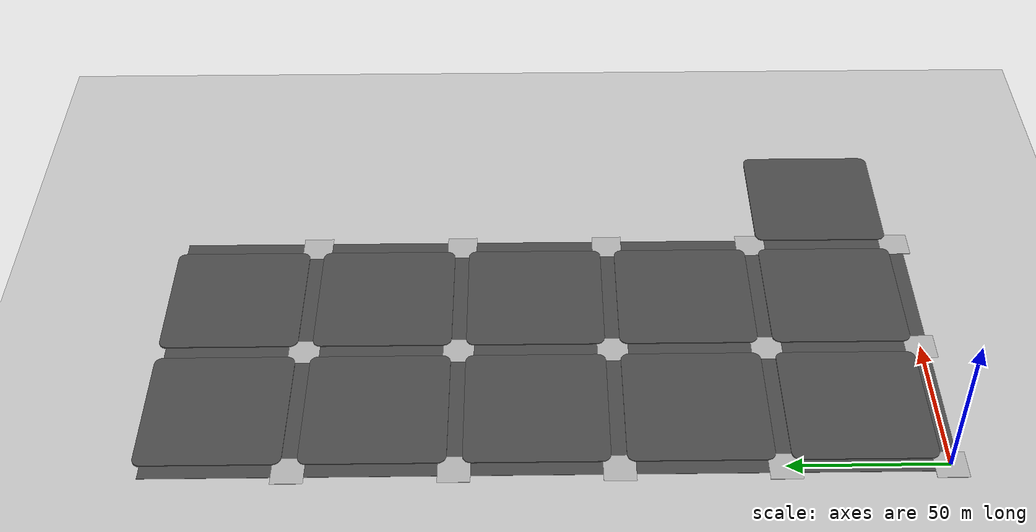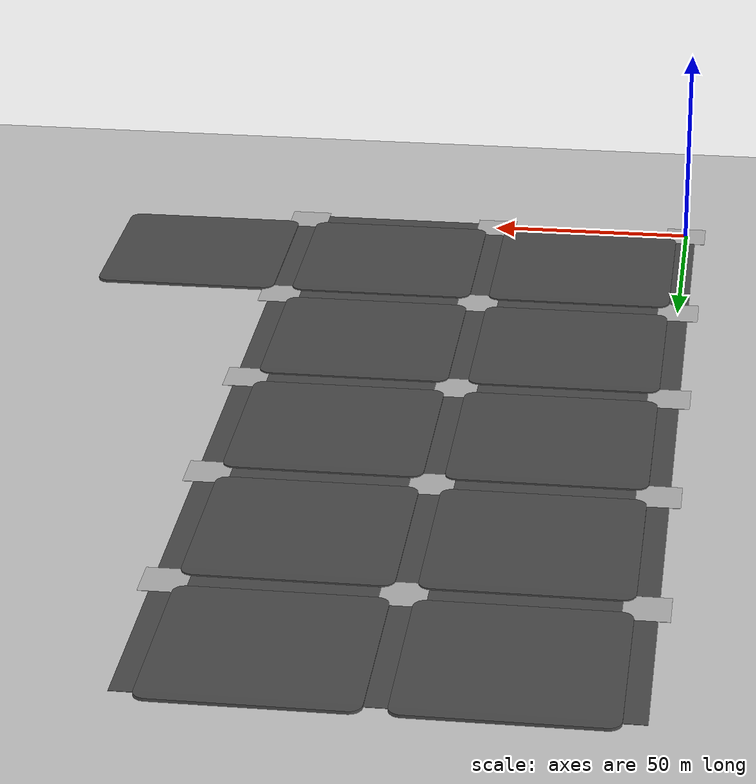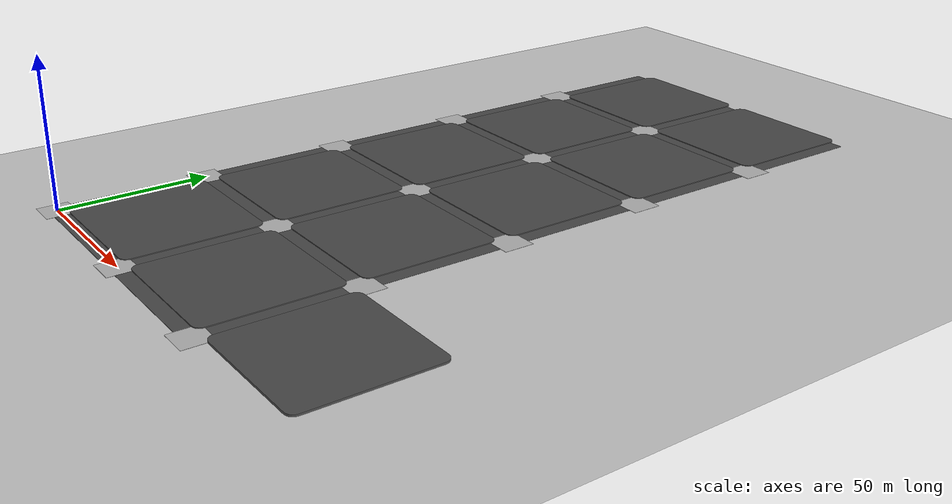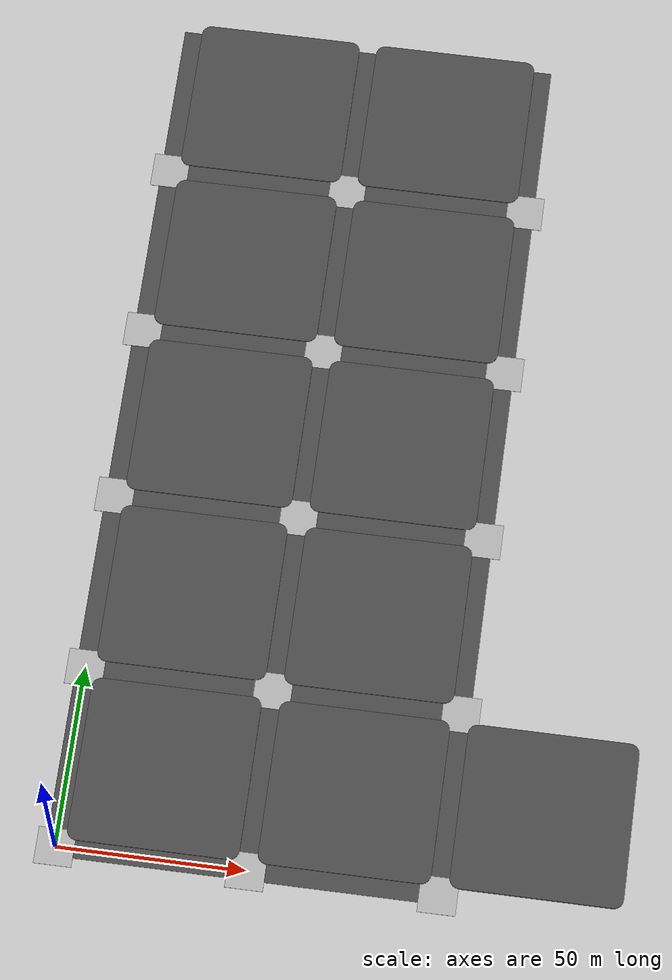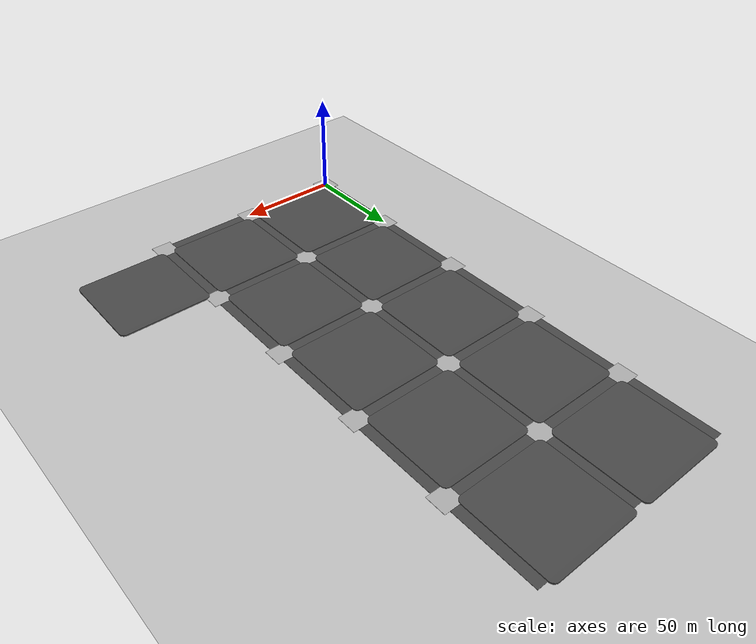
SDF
<sdf version="1.5">
 <world name="default">
  <model name="ground_plane">
   <static>1</static>
   <link name="link">
    <collision name="collision">
     <geometry><plane><normal>0 0 1</normal><size>10000 10000</size></plane></geometry>
     <surface>
      <contact><collide_bitmask>65535</collide_bitmask></contact>
      <friction><ode><mu>100</mu><mu2>50</mu2></ode></friction>
     </surface>
    </collision>
    <visual name="visual">
     <cast_shadows>0</cast_shadows>
     <geometry><plane><normal>0 0 1</normal><size>10000 10000</size></plane></geometry>
     <material>
      <script><uri>file://media/materials/scripts/gazebo.material</uri><name>Gazebo/Grey</name></script>
     </material>
    </visual>
   </link>
  </model>
  <model name="asphalt_plane_0_0">
   <pose>25 25 0 0 -0 0</pose>
   <static>1</static>
   <link name="link">
    <collision name="collision">
     <geometry>
      <mesh>
       <uri>/Users/selfcar/Desktop/Self-Driving-Comps/models/asphalt_plane/blockbevel.dae</uri>
       <scale>0.565 0.565 1</scale>
      </mesh>
     </geometry>
    </collision>
    <visual name="visual">
     <cast_shadows>0</cast_shadows>
     <geometry>
      <mesh>
       <uri>/Users/selfcar/Desktop/Self-Driving-Comps/models/asphalt_plane/blockbevel.dae</uri>
       <scale>0.565 0.565 1</scale>
      </mesh>
     </geometry>
     <material>
      <script>
       <uri>models/asphalt_plane/materials/scripts</uri>
       <uri>models/asphalt_plane/materials/textures</uri>
       <name>vrc/asphalt</name>
      </script>
     </material>
    </visual>
   </link>
  </model>
  <model name="asphalt_plane_1_0">
   <pose>75 25 0 0 -0 0</pose>
   <static>1</static>
   <link name="link">
    <collision name="collision">
     <geometry>
      <mesh>
       <uri>/Users/selfcar/Desktop/Self-Driving-Comps/models/asphalt_plane/blockbevel.dae</uri>
       <scale>0.565 0.565 1</scale>
      </mesh>
     </geometry>
    </collision>
    <visual name="visual">
     <cast_shadows>0</cast_shadows>
     <geometry>
      <mesh>
       <uri>/Users/selfcar/Desktop/Self-Driving-Comps/models/asphalt_plane/blockbevel.dae</uri>
       <scale>0.565 0.565 1</scale>
      </mesh>
     </geometry>
     <material>
      <script>
       <uri>models/asphalt_plane/materials/scripts</uri>
       <uri>models/asphalt_plane/materials/textures</uri>
       <name>vrc/asphalt</name>
      </script>
     </material>
    </visual>
   </link>
  </model>
  <model name="asphalt_plane_2_0">
   <pose>125 25 0 0 -0 0</pose>
   <static>1</static>
   <link name="link">
    <collision name="collision">
     <geometry>
      <mesh>
       <uri>/Users/selfcar/Desktop/Self-Driving-Comps/models/asphalt_plane/blockbevel.dae</uri>
       <scale>0.565 0.565 1</scale>
      </mesh>
     </geometry>
    </collision>
    <visual name="visual">
     <cast_shadows>0</cast_shadows>
     <geometry>
      <mesh>
       <uri>/Users/selfcar/Desktop/Self-Driving-Comps/models/asphalt_plane/blockbevel.dae</uri>
       <scale>0.565 0.565 1</scale>
      </mesh>
     </geometry>
     <material>
      <script>
       <uri>models/asphalt_plane/materials/scripts</uri>
       <uri>models/asphalt_plane/materials/textures</uri>
       <name>vrc/asphalt</name>
      </script>
     </material>
    </visual>
   </link>
  </model>
  <model name="asphalt_plane_0_1">
   <pose>25 75 0 0 -0 0</pose>
   <static>1</static>
   <link name="link">
    <collision name="collision">
     <geometry>
      <mesh>
       <uri>/Users/selfcar/Desktop/Self-Driving-Comps/models/asphalt_plane/blockbevel.dae</uri>
       <scale>0.565 0.565 1</scale>
      </mesh>
     </geometry>
    </collision>
    <visual name="visual">
     <cast_shadows>0</cast_shadows>
     <geometry>
      <mesh>
       <uri>/Users/selfcar/Desktop/Self-Driving-Comps/models/asphalt_plane/blockbevel.dae</uri>
       <scale>0.565 0.565 1</scale>
      </mesh>
     </geometry>
     <material>
      <script>
       <uri>models/asphalt_plane/materials/scripts</uri>
       <uri>models/asphalt_plane/materials/textures</uri>
       <name>vrc/asphalt</name>
      </script>
     </material>
    </visual>
   </link>
  </model>
  <model name="asphalt_plane_1_1">
   <pose>75 75 0 0 -0 0</pose>
   <static>1</static>
   <link name="link">
    <collision name="collision">
     <geometry>
      <mesh>
       <uri>/Users/selfcar/Desktop/Self-Driving-Comps/models/asphalt_plane/blockbevel.dae</uri>
       <scale>0.565 0.565 1</scale>
      </mesh>
     </geometry>
    </collision>
    <visual name="visual">
     <cast_shadows>0</cast_shadows>
     <geometry>
      <mesh>
       <uri>/Users/selfcar/Desktop/Self-Driving-Comps/models/asphalt_plane/blockbevel.dae</uri>
       <scale>0.565 0.565 1</scale>
      </mesh>
     </geometry>
     <material>
      <script>
       <uri>models/asphalt_plane/materials/scripts</uri>
       <uri>models/asphalt_plane/materials/textures</uri>
       <name>vrc/asphalt</name>
      </script>
     </material>
    </visual>
   </link>
  </model>
  <model name="asphalt_plane_0_2">
   <pose>25 125 0 0 -0 0</pose>
   <static>1</static>
   <link name="link">
    <collision name="collision">
     <geometry>
      <mesh>
       <uri>/Users/selfcar/Desktop/Self-Driving-Comps/models/asphalt_plane/blockbevel.dae</uri>
       <scale>0.565 0.565 1</scale>
      </mesh>
     </geometry>
    </collision>
    <visual name="visual">
     <cast_shadows>0</cast_shadows>
     <geometry>
      <mesh>
       <uri>/Users/selfcar/Desktop/Self-Driving-Comps/models/asphalt_plane/blockbevel.dae</uri>
       <scale>0.565 0.565 1</scale>
      </mesh>
     </geometry>
     <material>
      <script>
       <uri>models/asphalt_plane/materials/scripts</uri>
       <uri>models/asphalt_plane/materials/textures</uri>
       <name>vrc/asphalt</name>
      </script>
     </material>
    </visual>
   </link>
  </model>
  <model name="asphalt_plane_1_2">
   <pose>75 125 0 0 -0 0</pose>
   <static>1</static>
   <link name="link">
    <collision name="collision">
     <geometry>
      <mesh>
       <uri>/Users/selfcar/Desktop/Self-Driving-Comps/models/asphalt_plane/blockbevel.dae</uri>
       <scale>0.565 0.565 1</scale>
      </mesh>
     </geometry>
    </collision>
    <visual name="visual">
     <cast_shadows>0</cast_shadows>
     <geometry>
      <mesh>
       <uri>/Users/selfcar/Desktop/Self-Driving-Comps/models/asphalt_plane/blockbevel.dae</uri>
       <scale>0.565 0.565 1</scale>
      </mesh>
     </geometry>
     <material>
      <script>
       <uri>models/asphalt_plane/materials/scripts</uri>
       <uri>models/asphalt_plane/materials/textures</uri>
       <name>vrc/asphalt</name>
      </script>
     </material>
    </visual>
   </link>
  </model>
  <model name="asphalt_plane_0_3">
   <pose>25 175 0 0 -0 0</pose>
   <static>1</static>
   <link name="link">
    <collision name="collision">
     <geometry>
      <mesh>
       <uri>/Users/selfcar/Desktop/Self-Driving-Comps/models/asphalt_plane/blockbevel.dae</uri>
       <scale>0.565 0.565 1</scale>
      </mesh>
     </geometry>
    </collision>
    <visual name="visual">
     <cast_shadows>0</cast_shadows>
     <geometry>
      <mesh>
       <uri>/Users/selfcar/Desktop/Self-Driving-Comps/models/asphalt_plane/blockbevel.dae</uri>
       <scale>0.565 0.565 1</scale>
      </mesh>
     </geometry>
     <material>
      <script>
       <uri>models/asphalt_plane/materials/scripts</uri>
       <uri>models/asphalt_plane/materials/textures</uri>
       <name>vrc/asphalt</name>
      </script>
     </material>
    </visual>
   </link>
  </model>
  <model name="asphalt_plane_1_3">
   <pose>75 175 0 0 -0 0</pose>
   <static>1</static>
   <link name="link">
    <collision name="collision">
     <geometry>
      <mesh>
       <uri>/Users/selfcar/Desktop/Self-Driving-Comps/models/asphalt_plane/blockbevel.dae</uri>
       <scale>0.565 0.565 1</scale>
      </mesh>
     </geometry>
    </collision>
    <visual name="visual">
     <cast_shadows>0</cast_shadows>
     <geometry>
      <mesh>
       <uri>/Users/selfcar/Desktop/Self-Driving-Comps/models/asphalt_plane/blockbevel.dae</uri>
       <scale>0.565 0.565 1</scale>
      </mesh>
     </geometry>
     <material>
      <script>
       <uri>models/asphalt_plane/materials/scripts</uri>
       <uri>models/asphalt_plane/materials/textures</uri>
       <name>vrc/asphalt</name>
      </script>
     </material>
    </visual>
   </link>
  </model>
  <model name="asphalt_plane_0_4">
   <pose>25 225 0 0 -0 0</pose>
   <static>1</static>
   <link name="link">
    <collision name="collision">
     <geometry>
      <mesh>
       <uri>/Users/selfcar/Desktop/Self-Driving-Comps/models/asphalt_plane/blockbevel.dae</uri>
       <scale>0.565 0.565 1</scale>
      </mesh>
     </geometry>
    </collision>
    <visual name="visual">
     <cast_shadows>0</cast_shadows>
     <geometry>
      <mesh>
       <uri>/Users/selfcar/Desktop/Self-Driving-Comps/models/asphalt_plane/blockbevel.dae</uri>
       <scale>0.565 0.565 1</scale>
      </mesh>
     </geometry>
     <material>
      <script>
       <uri>models/asphalt_plane/materials/scripts</uri>
       <uri>models/asphalt_plane/materials/textures</uri>
       <name>vrc/asphalt</name>
      </script>
     </material>
    </visual>
   </link>
  </model>
  <model name="asphalt_plane_1_4">
   <pose>75 225 0 0 -0 0</pose>
   <static>1</static>
   <link name="link">
    <collision name="collision">
     <geometry>
      <mesh>
       <uri>/Users/selfcar/Desktop/Self-Driving-Comps/models/asphalt_plane/blockbevel.dae</uri>
       <scale>0.565 0.565 1</scale>
      </mesh>
     </geometry>
    </collision>
    <visual name="visual">
     <cast_shadows>0</cast_shadows>
     <geometry>
      <mesh>
       <uri>/Users/selfcar/Desktop/Self-Driving-Comps/models/asphalt_plane/blockbevel.dae</uri>
       <scale>0.565 0.565 1</scale>
      </mesh>
     </geometry>
     <material>
      <script>
       <uri>models/asphalt_plane/materials/scripts</uri>
       <uri>models/asphalt_plane/materials/textures</uri>
       <name>vrc/asphalt</name>
      </script>
     </material>
    </visual>
   </link>
  </model>
  <model name="road_1_0_0">
   <pose>0 25 0 0 -0 1.5707</pose>
   <static>1</static>
   <link name="link">
    <collision name="collision"><geometry><box><size>40 5 0.1</size></box></geometry></collision>
    <visual name="visual">
     <cast_shadows>0</cast_shadows>
     <geometry><box><size>40 5 0.1</size></box></geometry>
     <material>
      <script>
       <uri>model://comps_road/materials/scripts</uri>
       <uri>model://comps_road/materials/textures</uri>
       <name>comps_road</name>
      </script>
     </material>
    </visual>
   </link>
  </model>
  <model name="road_2_0_0">
   <pose>25 0 0 0 -0 0</pose>
   <static>1</static>
   <link name="link">
    <collision name="collision"><geometry><box><size>40 5 0.1</size></box></geometry></collision>
    <visual name="visual">
     <cast_shadows>0</cast_shadows>
     <geometry><box><size>40 5 0.1</size></box></geometry>
     <material>
      <script>
       <uri>model://comps_road/materials/scripts</uri>
       <uri>model://comps_road/materials/textures</uri>
       <name>comps_road</name>
      </script>
     </material>
    </visual>
   </link>
  </model>
  <model name="intersection_0_0">
   <static>1</static>
   <link name="link">
    <collision name="collision"><geometry><box><size>10 10 0.1</size></box></geometry></collision>
    <visual name="visual">
     <cast_shadows>0</cast_shadows>
     <geometry><box><size>10 10 0.1</size></box></geometry>
     <material>
      <script>
       <uri>model://intersection/materials/scripts</uri>
       <uri>model://intersection/materials/textures</uri>
       <name>intersection</name>
      </script>
     </material>
    </visual>
   </link>
  </model>
  <model name="road_1_1_0">
   <pose>50 25 0 0 -0 1.5707</pose>
   <static>1</static>
   <link name="link">
    <collision name="collision"><geometry><box><size>40 5 0.1</size></box></geometry></collision>
    <visual name="visual">
     <cast_shadows>0</cast_shadows>
     <geometry><box><size>40 5 0.1</size></box></geometry>
     <material>
      <script>
       <uri>model://comps_road/materials/scripts</uri>
       <uri>model://comps_road/materials/textures</uri>
       <name>comps_road</name>
      </script>
     </material>
    </visual>
   </link>
  </model>
  <model name="road_2_1_0">
   <pose>75 0 0 0 -0 0</pose>
   <static>1</static>
   <link name="link">
    <collision name="collision"><geometry><box><size>40 5 0.1</size></box></geometry></collision>
    <visual name="visual">
     <cast_shadows>0</cast_shadows>
     <geometry><box><size>40 5 0.1</size></box></geometry>
     <material>
      <script>
       <uri>model://comps_road/materials/scripts</uri>
       <uri>model://comps_road/materials/textures</uri>
       <name>comps_road</name>
      </script>
     </material>
    </visual>
   </link>
  </model>
  <model name="intersection_1_0">
   <pose>50 0 0 0 -0 0</pose>
   <static>1</static>
   <link name="link">
    <collision name="collision"><geometry><box><size>10 10 0.1</size></box></geometry></collision>
    <visual name="visual">
     <cast_shadows>0</cast_shadows>
     <geometry><box><size>10 10 0.1</size></box></geometry>
     <material>
      <script>
       <uri>model://intersection/materials/scripts</uri>
       <uri>model://intersection/materials/textures</uri>
       <name>intersection</name>
      </script>
     </material>
    </visual>
   </link>
  </model>
  <model name="road_1_2_0">
   <pose>100 25 0 0 -0 1.5707</pose>
   <static>1</static>
   <link name="link">
    <collision name="collision"><geometry><box><size>40 5 0.1</size></box></geometry></collision>
    <visual name="visual">
     <cast_shadows>0</cast_shadows>
     <geometry><box><size>40 5 0.1</size></box></geometry>
     <material>
      <script>
       <uri>model://comps_road/materials/scripts</uri>
       <uri>model://comps_road/materials/textures</uri>
       <name>comps_road</name>
      </script>
     </material>
    </visual>
   </link>
  </model>
  <model name="intersection_2_0">
   <pose>100 0 0 0 -0 0</pose>
   <static>1</static>
   <link name="link">
    <collision name="collision"><geometry><box><size>10 10 0.1</size></box></geometry></collision>
    <visual name="visual">
     <cast_shadows>0</cast_shadows>
     <geometry><box><size>10 10 0.1</size></box></geometry>
     <material>
      <script>
       <uri>model://intersection/materials/scripts</uri>
       <uri>model://intersection/materials/textures</uri>
       <name>intersection</name>
      </script>
     </material>
    </visual>
   </link>
  </model>
  <model name="road_1_0_1">
   <pose>0 75 0 0 -0 1.5707</pose>
   <static>1</static>
   <link name="link">
    <collision name="collision"><geometry><box><size>40 5 0.1</size></box></geometry></collision>
    <visual name="visual">
     <cast_shadows>0</cast_shadows>
     <geometry><box><size>40 5 0.1</size></box></geometry>
     <material>
      <script>
       <uri>model://comps_road/materials/scripts</uri>
       <uri>model://comps_road/materials/textures</uri>
       <name>comps_road</name>
      </script>
     </material>
    </visual>
   </link>
  </model>
  <model name="road_2_0_1">
   <pose>25 50 0 0 -0 0</pose>
   <static>1</static>
   <link name="link">
    <collision name="collision"><geometry><box><size>40 5 0.1</size></box></geometry></collision>
    <visual name="visual">
     <cast_shadows>0</cast_shadows>
     <geometry><box><size>40 5 0.1</size></box></geometry>
     <material>
      <script>
       <uri>model://comps_road/materials/scripts</uri>
       <uri>model://comps_road/materials/textures</uri>
       <name>comps_road</name>
      </script>
     </material>
    </visual>
   </link>
  </model>
  <model name="intersection_0_1">
   <pose>0 50 0 0 -0 0</pose>
   <static>1</static>
   <link name="link">
    <collision name="collision"><geometry><box><size>10 10 0.1</size></box></geometry></collision>
    <visual name="visual">
     <cast_shadows>0</cast_shadows>
     <geometry><box><size>10 10 0.1</size></box></geometry>
     <material>
      <script>
       <uri>model://intersection/materials/scripts</uri>
       <uri>model://intersection/materials/textures</uri>
       <name>intersection</name>
      </script>
     </material>
    </visual>
   </link>
  </model>
  <model name="road_1_1_1">
   <pose>50 75 0 0 -0 1.5707</pose>
   <static>1</static>
   <link name="link">
    <collision name="collision"><geometry><box><size>40 5 0.1</size></box></geometry></collision>
    <visual name="visual">
     <cast_shadows>0</cast_shadows>
     <geometry><box><size>40 5 0.1</size></box></geometry>
     <material>
      <script>
       <uri>model://comps_road/materials/scripts</uri>
       <uri>model://comps_road/materials/textures</uri>
       <name>comps_road</name>
      </script>
     </material>
    </visual>
   </link>
  </model>
  <model name="road_2_1_1">
   <pose>75 50 0 0 -0 0</pose>
   <static>1</static>
   <link name="link">
    <collision name="collision"><geometry><box><size>40 5 0.1</size></box></geometry></collision>
    <visual name="visual">
     <cast_shadows>0</cast_shadows>
     <geometry><box><size>40 5 0.1</size></box></geometry>
     <material>
      <script>
       <uri>model://comps_road/materials/scripts</uri>
       <uri>model://comps_road/materials/textures</uri>
       <name>comps_road</name>
      </script>
     </material>
    </visual>
   </link>
  </model>
  <model name="intersection_1_1">
   <pose>50 50 0 0 -0 0</pose>
   <static>1</static>
   <link name="link">
    <collision name="collision"><geometry><box><size>10 10 0.1</size></box></geometry></collision>
    <visual name="visual">
     <cast_shadows>0</cast_shadows>
     <geometry><box><size>10 10 0.1</size></box></geometry>
     <material>
      <script>
       <uri>model://intersection/materials/scripts</uri>
       <uri>model://intersection/materials/textures</uri>
       <name>intersection</name>
      </script>
     </material>
    </visual>
   </link>
  </model>
  <model name="road_1_2_1">
   <pose>100 75 0 0 -0 1.5707</pose>
   <static>1</static>
   <link name="link">
    <collision name="collision"><geometry><box><size>40 5 0.1</size></box></geometry></collision>
    <visual name="visual">
     <cast_shadows>0</cast_shadows>
     <geometry><box><size>40 5 0.1</size></box></geometry>
     <material>
      <script>
       <uri>model://comps_road/materials/scripts</uri>
       <uri>model://comps_road/materials/textures</uri>
       <name>comps_road</name>
      </script>
     </material>
    </visual>
   </link>
  </model>
  <model name="intersection_2_1">
   <pose>100 50 0 0 -0 0</pose>
   <static>1</static>
   <link name="link">
    <collision name="collision"><geometry><box><size>10 10 0.1</size></box></geometry></collision>
    <visual name="visual">
     <cast_shadows>0</cast_shadows>
     <geometry><box><size>10 10 0.1</size></box></geometry>
     <material>
      <script>
       <uri>model://intersection/materials/scripts</uri>
       <uri>model://intersection/materials/textures</uri>
       <name>intersection</name>
      </script>
     </material>
    </visual>
   </link>
  </model>
  <model name="road_1_0_2">
   <pose>0 125 0 0 -0 1.5707</pose>
   <static>1</static>
   <link name="link">
    <collision name="collision"><geometry><box><size>40 5 0.1</size></box></geometry></collision>
    <visual name="visual">
     <cast_shadows>0</cast_shadows>
     <geometry><box><size>40 5 0.1</size></box></geometry>
     <material>
      <script>
       <uri>model://comps_road/materials/scripts</uri>
       <uri>model://comps_road/materials/textures</uri>
       <name>comps_road</name>
      </script>
     </material>
    </visual>
   </link>
  </model>
  <model name="road_2_0_2">
   <pose>25 100 0 0 -0 0</pose>
   <static>1</static>
   <link name="link">
    <collision name="collision"><geometry><box><size>40 5 0.1</size></box></geometry></collision>
    <visual name="visual">
     <cast_shadows>0</cast_shadows>
     <geometry><box><size>40 5 0.1</size></box></geometry>
     <material>
      <script>
       <uri>model://comps_road/materials/scripts</uri>
       <uri>model://comps_road/materials/textures</uri>
       <name>comps_road</name>
      </script>
     </material>
    </visual>
   </link>
  </model>
  <model name="intersection_0_2">
   <pose>0 100 0 0 -0 0</pose>
   <static>1</static>
   <link name="link">
    <collision name="collision"><geometry><box><size>10 10 0.1</size></box></geometry></collision>
    <visual name="visual">
     <cast_shadows>0</cast_shadows>
     <geometry><box><size>10 10 0.1</size></box></geometry>
     <material>
      <script>
       <uri>model://intersection/materials/scripts</uri>
       <uri>model://intersection/materials/textures</uri>
       <name>intersection</name>
      </script>
     </material>
    </visual>
   </link>
  </model>
  <model name="road_1_1_2">
   <pose>50 125 0 0 -0 1.5707</pose>
   <static>1</static>
   <link name="link">
    <collision name="collision"><geometry><box><size>40 5 0.1</size></box></geometry></collision>
    <visual name="visual">
     <cast_shadows>0</cast_shadows>
     <geometry><box><size>40 5 0.1</size></box></geometry>
     <material>
      <script>
       <uri>model://comps_road/materials/scripts</uri>
       <uri>model://comps_road/materials/textures</uri>
       <name>comps_road</name>
      </script>
     </material>
    </visual>
   </link>
  </model>
  <model name="road_2_1_2">
   <pose>75 100 0 0 -0 0</pose>
   <static>1</static>
   <link name="link">
    <collision name="collision"><geometry><box><size>40 5 0.1</size></box></geometry></collision>
    <visual name="visual">
     <cast_shadows>0</cast_shadows>
     <geometry><box><size>40 5 0.1</size></box></geometry>
     <material>
      <script>
       <uri>model://comps_road/materials/scripts</uri>
       <uri>model://comps_road/materials/textures</uri>
       <name>comps_road</name>
      </script>
     </material>
    </visual>
   </link>
  </model>
  <model name="intersection_1_2">
   <pose>50 100 0 0 -0 0</pose>
   <static>1</static>
   <link name="link">
    <collision name="collision"><geometry><box><size>10 10 0.1</size></box></geometry></collision>
    <visual name="visual">
     <cast_shadows>0</cast_shadows>
     <geometry><box><size>10 10 0.1</size></box></geometry>
     <material>
      <script>
       <uri>model://intersection/materials/scripts</uri>
       <uri>model://intersection/materials/textures</uri>
       <name>intersection</name>
      </script>
     </material>
    </visual>
   </link>
  </model>
  <model name="road_1_2_2">
   <pose>100 125 0 0 -0 1.5707</pose>
   <static>1</static>
   <link name="link">
    <collision name="collision"><geometry><box><size>40 5 0.1</size></box></geometry></collision>
    <visual name="visual">
     <cast_shadows>0</cast_shadows>
     <geometry><box><size>40 5 0.1</size></box></geometry>
     <material>
      <script>
       <uri>model://comps_road/materials/scripts</uri>
       <uri>model://comps_road/materials/textures</uri>
       <name>comps_road</name>
      </script>
     </material>
    </visual>
   </link>
  </model>
  <model name="intersection_2_2">
   <pose>100 100 0 0 -0 0</pose>
   <static>1</static>
   <link name="link">
    <collision name="collision"><geometry><box><size>10 10 0.1</size></box></geometry></collision>
    <visual name="visual">
     <cast_shadows>0</cast_shadows>
     <geometry><box><size>10 10 0.1</size></box></geometry>
     <material>
      <script>
       <uri>model://intersection/materials/scripts</uri>
       <uri>model://intersection/materials/textures</uri>
       <name>intersection</name>
      </script>
     </material>
    </visual>
   </link>
  </model>
  <model name="road_1_0_3">
   <pose>0 175 0 0 -0 1.5707</pose>
   <static>1</static>
   <link name="link">
    <collision name="collision"><geometry><box><size>40 5 0.1</size></box></geometry></collision>
    <visual name="visual">
     <cast_shadows>0</cast_shadows>
     <geometry><box><size>40 5 0.1</size></box></geometry>
     <material>
      <script>
       <uri>model://comps_road/materials/scripts</uri>
       <uri>model://comps_road/materials/textures</uri>
       <name>comps_road</name>
      </script>
     </material>
    </visual>
   </link>
  </model>
  <model name="road_2_0_3">
   <pose>25 150 0 0 -0 0</pose>
   <static>1</static>
   <link name="link">
    <collision name="collision"><geometry><box><size>40 5 0.1</size></box></geometry></collision>
    <visual name="visual">
     <cast_shadows>0</cast_shadows>
     <geometry><box><size>40 5 0.1</size></box></geometry>
     <material>
      <script>
       <uri>model://comps_road/materials/scripts</uri>
       <uri>model://comps_road/materials/textures</uri>
       <name>comps_road</name>
      </script>
     </material>
    </visual>
   </link>
  </model>
  <model name="intersection_0_3">
   <pose>0 150 0 0 -0 0</pose>
   <static>1</static>
   <link name="link">
    <collision name="collision"><geometry><box><size>10 10 0.1</size></box></geometry></collision>
    <visual name="visual">
     <cast_shadows>0</cast_shadows>
     <geometry><box><size>10 10 0.1</size></box></geometry>
     <material>
      <script>
       <uri>model://intersection/materials/scripts</uri>
       <uri>model://intersection/materials/textures</uri>
       <name>intersection</name>
      </script>
     </material>
    </visual>
   </link>
  </model>
  <model name="road_1_1_3">
   <pose>50 175 0 0 -0 1.5707</pose>
   <static>1</static>
   <link name="link">
    <collision name="collision"><geometry><box><size>40 5 0.1</size></box></geometry></collision>
    <visual name="visual">
     <cast_shadows>0</cast_shadows>
     <geometry><box><size>40 5 0.1</size></box></geometry>
     <material>
      <script>
       <uri>model://comps_road/materials/scripts</uri>
       <uri>model://comps_road/materials/textures</uri>
       <name>comps_road</name>
      </script>
     </material>
    </visual>
   </link>
  </model>
  <model name="road_2_1_3">
   <pose>75 150 0 0 -0 0</pose>
   <static>1</static>
   <link name="link">
    <collision name="collision"><geometry><box><size>40 5 0.1</size></box></geometry></collision>
    <visual name="visual">
     <cast_shadows>0</cast_shadows>
     <geometry><box><size>40 5 0.1</size></box></geometry>
     <material>
      <script>
       <uri>model://comps_road/materials/scripts</uri>
       <uri>model://comps_road/materials/textures</uri>
       <name>comps_road</name>
      </script>
     </material>
    </visual>
   </link>
  </model>
  <model name="intersection_1_3">
   <pose>50 150 0 0 -0 0</pose>
   <static>1</static>
   <link name="link">
    <collision name="collision"><geometry><box><size>10 10 0.1</size></box></geometry></collision>
    <visual name="visual">
     <cast_shadows>0</cast_shadows>
     <geometry><box><size>10 10 0.1</size></box></geometry>
     <material>
      <script>
       <uri>model://intersection/materials/scripts</uri>
       <uri>model://intersection/materials/textures</uri>
       <name>intersection</name>
      </script>
     </material>
    </visual>
   </link>
  </model>
  <model name="road_1_2_3">
   <pose>100 175 0 0 -0 1.5707</pose>
   <static>1</static>
   <link name="link">
    <collision name="collision"><geometry><box><size>40 5 0.1</size></box></geometry></collision>
    <visual name="visual">
     <cast_shadows>0</cast_shadows>
     <geometry><box><size>40 5 0.1</size></box></geometry>
     <material>
      <script>
       <uri>model://comps_road/materials/scripts</uri>
       <uri>model://comps_road/materials/textures</uri>
       <name>comps_road</name>
      </script>
     </material>
    </visual>
   </link>
  </model>
  <model name="intersection_2_3">
   <pose>100 150 0 0 -0 0</pose>
   <static>1</static>
   <link name="link">
    <collision name="collision"><geometry><box><size>10 10 0.1</size></box></geometry></collision>
    <visual name="visual">
     <cast_shadows>0</cast_shadows>
     <geometry><box><size>10 10 0.1</size></box></geometry>
     <material>
      <script>
       <uri>model://intersection/materials/scripts</uri>
       <uri>model://intersection/materials/textures</uri>
       <name>intersection</name>
      </script>
     </material>
    </visual>
   </link>
  </model>
  <model name="road_1_0_4">
   <pose>0 225 0 0 -0 1.5707</pose>
   <static>1</static>
   <link name="link">
    <collision name="collision"><geometry><box><size>40 5 0.1</size></box></geometry></collision>
    <visual name="visual">
     <cast_shadows>0</cast_shadows>
     <geometry><box><size>40 5 0.1</size></box></geometry>
     <material>
      <script>
       <uri>model://comps_road/materials/scripts</uri>
       <uri>model://comps_road/materials/textures</uri>
       <name>comps_road</name>
      </script>
     </material>
    </visual>
   </link>
  </model>
  <model name="road_2_0_4">
   <pose>25 200 0 0 -0 0</pose>
   <static>1</static>
   <link name="link">
    <collision name="collision"><geometry><box><size>40 5 0.1</size></box></geometry></collision>
    <visual name="visual">
     <cast_shadows>0</cast_shadows>
     <geometry><box><size>40 5 0.1</size></box></geometry>
     <material>
      <script>
       <uri>model://comps_road/materials/scripts</uri>
       <uri>model://comps_road/materials/textures</uri>
       <name>comps_road</name>
      </script>
     </material>
    </visual>
   </link>
  </model>
  <model name="intersection_0_4">
   <pose>0 200 0 0 -0 0</pose>
   <static>1</static>
   <link name="link">
    <collision name="collision"><geometry><box><size>10 10 0.1</size></box></geometry></collision>
    <visual name="visual">
     <cast_shadows>0</cast_shadows>
     <geometry><box><size>10 10 0.1</size></box></geometry>
     <material>
      <script>
       <uri>model://intersection/materials/scripts</uri>
       <uri>model://intersection/materials/textures</uri>
       <name>intersection</name>
      </script>
     </material>
    </visual>
   </link>
  </model>
  <model name="road_1_1_4">
   <pose>50 225 0 0 -0 1.5707</pose>
   <static>1</static>
   <link name="link">
    <collision name="collision"><geometry><box><size>40 5 0.1</size></box></geometry></collision>
    <visual name="visual">
     <cast_shadows>0</cast_shadows>
     <geometry><box><size>40 5 0.1</size></box></geometry>
     <material>
      <script>
       <uri>model://comps_road/materials/scripts</uri>
       <uri>model://comps_road/materials/textures</uri>
       <name>comps_road</name>
      </script>
     </material>
    </visual>
   </link>
  </model>
  <model name="road_2_1_4">
   <pose>75 200 0 0 -0 0</pose>
   <static>1</static>
   <link name="link">
    <collision name="collision"><geometry><box><size>40 5 0.1</size></box></geometry></collision>
    <visual name="visual">
     <cast_shadows>0</cast_shadows>
     <geometry><box><size>40 5 0.1</size></box></geometry>
     <material>
      <script>
       <uri>model://comps_road/materials/scripts</uri>
       <uri>model://comps_road/materials/textures</uri>
       <name>comps_road</name>
      </script>
     </material>
    </visual>
   </link>
  </model>
  <model name="intersection_1_4">
   <pose>50 200 0 0 -0 0</pose>
   <static>1</static>
   <link name="link">
    <collision name="collision"><geometry><box><size>10 10 0.1</size></box></geometry></collision>
    <visual name="visual">
     <cast_shadows>0</cast_shadows>
     <geometry><box><size>10 10 0.1</size></box></geometry>
     <material>
      <script>
       <uri>model://intersection/materials/scripts</uri>
       <uri>model://intersection/materials/textures</uri>
       <name>intersection</name>
      </script>
     </material>
    </visual>
   </link>
  </model>
  <model name="road_1_2_4">
   <pose>100 225 0 0 -0 1.5707</pose>
   <static>1</static>
   <link name="link">
    <collision name="collision"><geometry><box><size>40 5 0.1</size></box></geometry></collision>
    <visual name="visual">
     <cast_shadows>0</cast_shadows>
     <geometry><box><size>40 5 0.1</size></box></geometry>
     <material>
      <script>
       <uri>model://comps_road/materials/scripts</uri>
       <uri>model://comps_road/materials/textures</uri>
       <name>comps_road</name>
      </script>
     </material>
    </visual>
   </link>
  </model>
  <model name="intersection_2_4">
   <pose>100 200 0 0 -0 0</pose>
   <static>1</static>
   <link name="link">
    <collision name="collision"><geometry><box><size>10 10 0.1</size></box></geometry></collision>
    <visual name="visual">
     <cast_shadows>0</cast_shadows>
     <geometry><box><size>10 10 0.1</size></box></geometry>
     <material>
      <script>
       <uri>model://intersection/materials/scripts</uri>
       <uri>model://intersection/materials/textures</uri>
       <name>intersection</name>
      </script>
     </material>
    </visual>
   </link>
  </model>
 </world>
</sdf>
